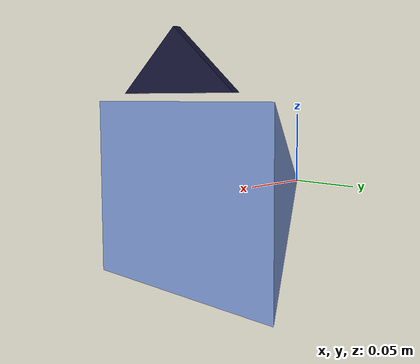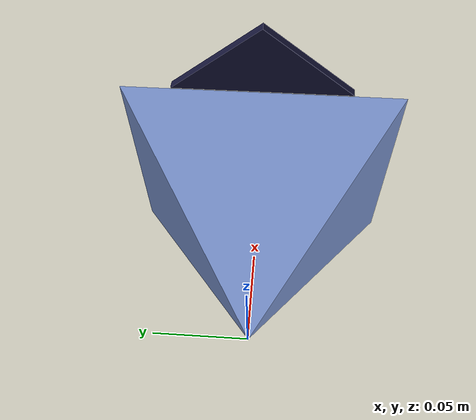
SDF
<?xml version='1.0'?>
<sdf version="1.5">
    <model name="camera">
    <static>true</static>
        <link name="link">
        <visual name="visual">
            <pose>0 0 0 0 0 -1.57</pose>
            <geometry>
            <mesh>
                <uri>model://camera/meshes/camera.dae</uri>
            </mesh>
            </geometry>
        </visual>
        <sensor name="camera" type="camera">
            <camera>
            <horizontal_fov>1.047</horizontal_fov>
            <image>
                <width>640</width>
                <height>480</height>
            </image>
            <clip>
                <near>0.1</near>
                <far>100</far>
            </clip>
            <distortion>
                <k1>0</k1>
                <k2>0</k2>
                <k3>0</k3>
                <p1>0</p1>
                <p2>0</p2>
                <center>0.5 0.5</center>
            </distortion>
            </camera>
            <always_on>1</always_on>
            <update_rate>10</update_rate>
            <visualize>true</visualize>
            <plugin name="sensor_ipc" filename="libsensor_ipc.so"/>
        </sensor>
        </link>
    </model>
</sdf>
